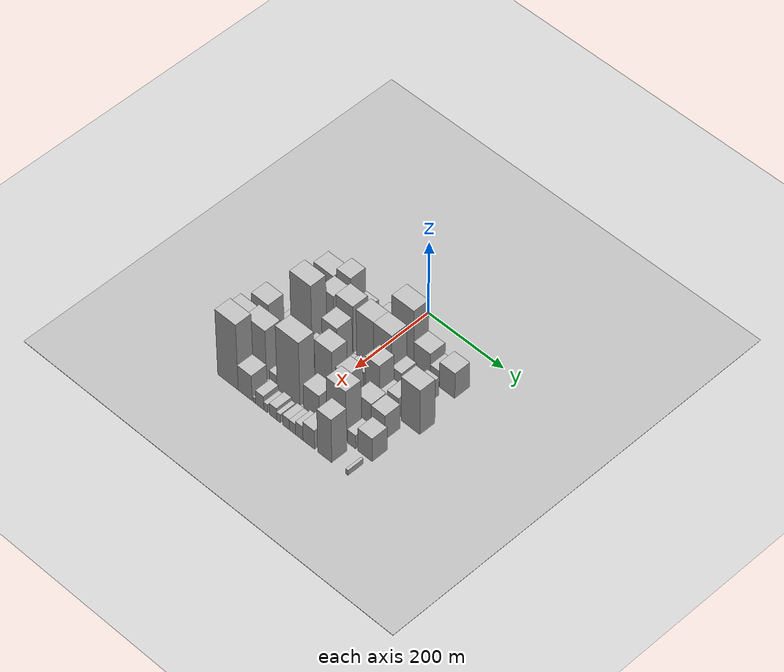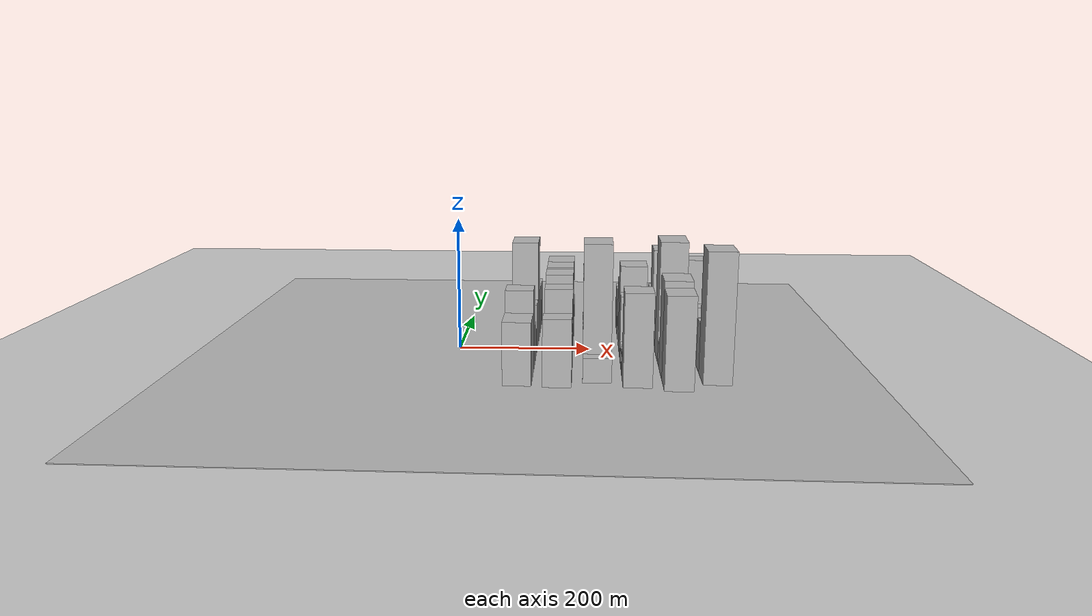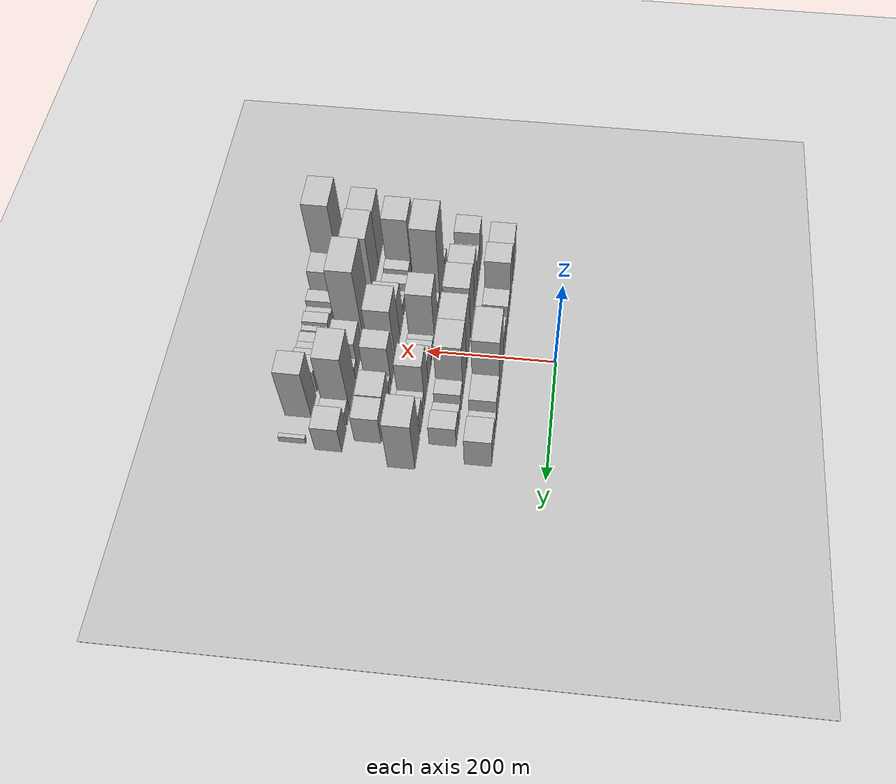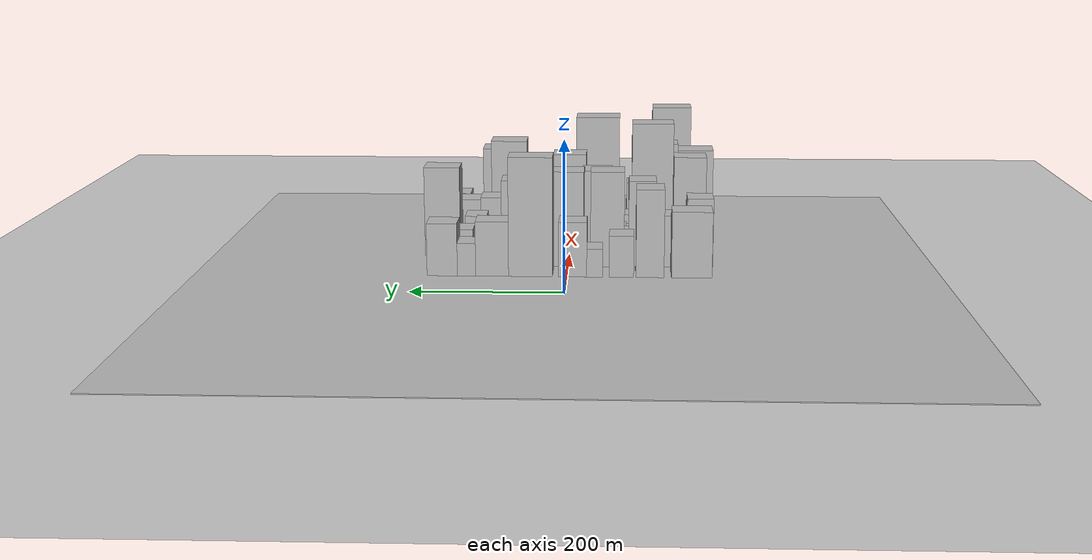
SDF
<sdf version="1.6">
 <world name="default">
  <include><name>ground_plane_1</name><uri>model://HANNAS_ground_plane</uri></include>
  <include>
   <name>ground_plane_2</name>
   <uri>model://HANNAS_ground_plane</uri>
   <pose>100 0 0  0 0 0</pose>
  </include>
  <model name="building_20">
   <static>1</static>
   <pose>100.0000 -166.6295 0 0.000000 0.000000 0.000000</pose>
   <link name="link">
    <pose>0 0 45.00 0 0 0</pose>
    <collision name="collision"><geometry><box><size>40.0000 53.7943 90.0000</size></box></geometry></collision>
    <visual name="visual">
     <cast_shadows>0</cast_shadows>
     <geometry><box><size>40.0000 53.7943 90.0000</size></box></geometry>
     <material>
      <script>
       <uri>model://HANNAS_wall/materials/scripts</uri>
       <uri>model://HANNAS_wall/materials/textures</uri>
       <name>vrc/HANNAS_wall</name>
      </script>
     </material>
    </visual>
   </link>
  </model>
  <model name="building_21">
   <static>1</static>
   <pose>100.0000 -111.0268 0 0.000000 0.000000 0.000000</pose>
   <link name="link">
    <pose>0 0 60.00 0 0 0</pose>
    <collision name="collision"><geometry><box><size>40.0000 37.4112 120.0000</size></box></geometry></collision>
    <visual name="visual">
     <cast_shadows>0</cast_shadows>
     <geometry><box><size>40.0000 37.4112 120.0000</size></box></geometry>
     <material>
      <script>
       <uri>model://HANNAS_wall/materials/scripts</uri>
       <uri>model://HANNAS_wall/materials/textures</uri>
       <name>vrc/HANNAS_wall</name>
      </script>
     </material>
    </visual>
   </link>
  </model>
  <model name="building_22">
   <static>1</static>
   <pose>100.0000 -73.0119 0 0.000000 0.000000 0.000000</pose>
   <link name="link">
    <pose>0 0 28.50 0 0 0</pose>
    <collision name="collision"><geometry><box><size>40.0000 32.6185 57.0000</size></box></geometry></collision>
    <visual name="visual">
     <cast_shadows>0</cast_shadows>
     <geometry><box><size>40.0000 32.6185 57.0000</size></box></geometry>
     <material>
      <script>
       <uri>model://HANNAS_wall/materials/scripts</uri>
       <uri>model://HANNAS_wall/materials/textures</uri>
       <name>vrc/HANNAS_wall</name>
      </script>
     </material>
    </visual>
   </link>
  </model>
  <model name="building_23">
   <static>1</static>
   <pose>100.0000 -37.2203 0 0.000000 0.000000 0.000000</pose>
   <link name="link">
    <pose>0 0 19.50 0 0 0</pose>
    <collision name="collision"><geometry><box><size>40.0000 20.9647 39.0000</size></box></geometry></collision>
    <visual name="visual">
     <cast_shadows>0</cast_shadows>
     <geometry><box><size>40.0000 20.9647 39.0000</size></box></geometry>
     <material>
      <script>
       <uri>model://HANNAS_wall/materials/scripts</uri>
       <uri>model://HANNAS_wall/materials/textures</uri>
       <name>vrc/HANNAS_wall</name>
      </script>
     </material>
    </visual>
   </link>
  </model>
  <model name="building_24">
   <static>1</static>
   <pose>100.0000 -7.9457 0 0.000000 0.000000 0.000000</pose>
   <link name="link">
    <pose>0 0 37.50 0 0 0</pose>
    <collision name="collision"><geometry><box><size>40.0000 37.5844 75.0000</size></box></geometry></collision>
    <visual name="visual">
     <cast_shadows>0</cast_shadows>
     <geometry><box><size>40.0000 37.5844 75.0000</size></box></geometry>
     <material>
      <script>
       <uri>model://HANNAS_wall/materials/scripts</uri>
       <uri>model://HANNAS_wall/materials/textures</uri>
       <name>vrc/HANNAS_wall</name>
      </script>
     </material>
    </visual>
   </link>
  </model>
  <model name="building_25">
   <static>1</static>
   <pose>100.0000 48.2471 0 0.000000 0.000000 0.000000</pose>
   <link name="link">
    <pose>0 0 81.00 0 0 0</pose>
    <collision name="collision"><geometry><box><size>40.0000 58.8012 162.0000</size></box></geometry></collision>
    <visual name="visual">
     <cast_shadows>0</cast_shadows>
     <geometry><box><size>40.0000 58.8012 162.0000</size></box></geometry>
     <material>
      <script>
       <uri>model://HANNAS_wall/materials/scripts</uri>
       <uri>model://HANNAS_wall/materials/textures</uri>
       <name>vrc/HANNAS_wall</name>
      </script>
     </material>
    </visual>
   </link>
  </model>
  <model name="building_26">
   <static>1</static>
   <pose>100.0000 99.6738 0 0.000000 0.000000 0.000000</pose>
   <link name="link">
    <pose>0 0 37.50 0 0 0</pose>
    <collision name="collision"><geometry><box><size>40.0000 44.0522 75.0000</size></box></geometry></collision>
    <visual name="visual">
     <cast_shadows>0</cast_shadows>
     <geometry><box><size>40.0000 44.0522 75.0000</size></box></geometry>
     <material>
      <script>
       <uri>model://HANNAS_wall/materials/scripts</uri>
       <uri>model://HANNAS_wall/materials/textures</uri>
       <name>vrc/HANNAS_wall</name>
      </script>
     </material>
    </visual>
   </link>
  </model>
  <model name="building_27">
   <static>1</static>
   <pose>100.0000 133.9592 0 0.000000 0.000000 0.000000</pose>
   <link name="link">
    <pose>0 0 22.50 0 0 0</pose>
    <collision name="collision"><geometry><box><size>40.0000 24.5187 45.0000</size></box></geometry></collision>
    <visual name="visual">
     <cast_shadows>0</cast_shadows>
     <geometry><box><size>40.0000 24.5187 45.0000</size></box></geometry>
     <material>
      <script>
       <uri>model://HANNAS_wall/materials/scripts</uri>
       <uri>model://HANNAS_wall/materials/textures</uri>
       <name>vrc/HANNAS_wall</name>
      </script>
     </material>
    </visual>
   </link>
  </model>
  <model name="building_28">
   <static>1</static>
   <pose>100.0000 166.5390 0 0.000000 0.000000 0.000000</pose>
   <link name="link">
    <pose>0 0 36.00 0 0 0</pose>
    <collision name="collision"><geometry><box><size>40.0000 40.6410 72.0000</size></box></geometry></collision>
    <visual name="visual">
     <cast_shadows>0</cast_shadows>
     <geometry><box><size>40.0000 40.6410 72.0000</size></box></geometry>
     <material>
      <script>
       <uri>model://HANNAS_wall/materials/scripts</uri>
       <uri>model://HANNAS_wall/materials/textures</uri>
       <name>vrc/HANNAS_wall</name>
      </script>
     </material>
    </visual>
   </link>
  </model>
  <model name="building_72">
   <static>1</static>
   <pose>155.0000 -179.8344 0 0.000000 0.000000 0.000000</pose>
   <link name="link">
    <pose>0 0 48.00 0 0 0</pose>
    <collision name="collision"><geometry><box><size>40.0000 35.5413 96.0000</size></box></geometry></collision>
    <visual name="visual">
     <cast_shadows>0</cast_shadows>
     <geometry><box><size>40.0000 35.5413 96.0000</size></box></geometry>
     <material>
      <script>
       <uri>model://HANNAS_wall/materials/scripts</uri>
       <uri>model://HANNAS_wall/materials/textures</uri>
       <name>vrc/HANNAS_wall</name>
      </script>
     </material>
    </visual>
   </link>
  </model>
  <model name="building_73">
   <static>1</static>
   <pose>155.0000 -139.4608 0 0.000000 0.000000 0.000000</pose>
   <link name="link">
    <pose>0 0 36.00 0 0 0</pose>
    <collision name="collision"><geometry><box><size>40.0000 39.2060 72.0000</size></box></geometry></collision>
    <visual name="visual">
     <cast_shadows>0</cast_shadows>
     <geometry><box><size>40.0000 39.2060 72.0000</size></box></geometry>
     <material>
      <script>
       <uri>model://HANNAS_wall/materials/scripts</uri>
       <uri>model://HANNAS_wall/materials/textures</uri>
       <name>vrc/HANNAS_wall</name>
      </script>
     </material>
    </visual>
   </link>
  </model>
  <model name="building_74">
   <static>1</static>
   <pose>155.0000 -101.2993 0 0.000000 0.000000 0.000000</pose>
   <link name="link">
    <pose>0 0 60.00 0 0 0</pose>
    <collision name="collision"><geometry><box><size>40.0000 37.1170 120.0000</size></box></geometry></collision>
    <visual name="visual">
     <cast_shadows>0</cast_shadows>
     <geometry><box><size>40.0000 37.1170 120.0000</size></box></geometry>
     <material>
      <script>
       <uri>model://HANNAS_wall/materials/scripts</uri>
       <uri>model://HANNAS_wall/materials/textures</uri>
       <name>vrc/HANNAS_wall</name>
      </script>
     </material>
    </visual>
   </link>
  </model>
  <model name="building_75">
   <static>1</static>
   <pose>155.0000 -53.7325 0 0.000000 0.000000 0.000000</pose>
   <link name="link">
    <pose>0 0 66.00 0 0 0</pose>
    <collision name="collision"><geometry><box><size>40.0000 46.0166 132.0000</size></box></geometry></collision>
    <visual name="visual">
     <cast_shadows>0</cast_shadows>
     <geometry><box><size>40.0000 46.0166 132.0000</size></box></geometry>
     <material>
      <script>
       <uri>model://HANNAS_wall/materials/scripts</uri>
       <uri>model://HANNAS_wall/materials/textures</uri>
       <name>vrc/HANNAS_wall</name>
      </script>
     </material>
    </visual>
   </link>
  </model>
  <model name="building_76">
   <static>1</static>
   <pose>155.0000 1.4475 0 0.000000 0.000000 0.000000</pose>
   <link name="link">
    <pose>0 0 66.00 0 0 0</pose>
    <collision name="collision"><geometry><box><size>40.0000 46.3434 132.0000</size></box></geometry></collision>
    <visual name="visual">
     <cast_shadows>0</cast_shadows>
     <geometry><box><size>40.0000 46.3434 132.0000</size></box></geometry>
     <material>
      <script>
       <uri>model://HANNAS_wall/materials/scripts</uri>
       <uri>model://HANNAS_wall/materials/textures</uri>
       <name>vrc/HANNAS_wall</name>
      </script>
     </material>
    </visual>
   </link>
  </model>
  <model name="building_77">
   <static>1</static>
   <pose>155.0000 49.1085 0 0.000000 0.000000 0.000000</pose>
   <link name="link">
    <pose>0 0 66.00 0 0 0</pose>
    <collision name="collision"><geometry><box><size>40.0000 48.9786 132.0000</size></box></geometry></collision>
    <visual name="visual">
     <cast_shadows>0</cast_shadows>
     <geometry><box><size>40.0000 48.9786 132.0000</size></box></geometry>
     <material>
      <script>
       <uri>model://HANNAS_wall/materials/scripts</uri>
       <uri>model://HANNAS_wall/materials/textures</uri>
       <name>vrc/HANNAS_wall</name>
      </script>
     </material>
    </visual>
   </link>
  </model>
  <model name="building_78">
   <static>1</static>
   <pose>155.0000 86.4016 0 0.000000 0.000000 0.000000</pose>
   <link name="link">
    <pose>0 0 22.50 0 0 0</pose>
    <collision name="collision"><geometry><box><size>40.0000 25.6076 45.0000</size></box></geometry></collision>
    <visual name="visual">
     <cast_shadows>0</cast_shadows>
     <geometry><box><size>40.0000 25.6076 45.0000</size></box></geometry>
     <material>
      <script>
       <uri>model://HANNAS_wall/materials/scripts</uri>
       <uri>model://HANNAS_wall/materials/textures</uri>
       <name>vrc/HANNAS_wall</name>
      </script>
     </material>
    </visual>
   </link>
  </model>
  <model name="building_79">
   <static>1</static>
   <pose>155.0000 118.9944 0 0.000000 0.000000 0.000000</pose>
   <link name="link">
    <pose>0 0 18.00 0 0 0</pose>
    <collision name="collision"><geometry><box><size>40.0000 21.5780 36.0000</size></box></geometry></collision>
    <visual name="visual">
     <cast_shadows>0</cast_shadows>
     <geometry><box><size>40.0000 21.5780 36.0000</size></box></geometry>
     <material>
      <script>
       <uri>model://HANNAS_wall/materials/scripts</uri>
       <uri>model://HANNAS_wall/materials/textures</uri>
       <name>vrc/HANNAS_wall</name>
      </script>
     </material>
    </visual>
   </link>
  </model>
  <model name="building_80">
   <static>1</static>
   <pose>155.0000 144.7499 0 0.000000 0.000000 0.000000</pose>
   <link name="link">
    <pose>0 0 25.50 0 0 0</pose>
    <collision name="collision"><geometry><box><size>40.0000 29.9330 51.0000</size></box></geometry></collision>
    <visual name="visual">
     <cast_shadows>0</cast_shadows>
     <geometry><box><size>40.0000 29.9330 51.0000</size></box></geometry>
     <material>
      <script>
       <uri>model://HANNAS_wall/materials/scripts</uri>
       <uri>model://HANNAS_wall/materials/textures</uri>
       <name>vrc/HANNAS_wall</name>
      </script>
     </material>
    </visual>
   </link>
  </model>
  <model name="building_124">
   <static>1</static>
   <pose>210.0000 -163.6286 0 0.000000 0.000000 0.000000</pose>
   <link name="link">
    <pose>0 0 18.00 0 0 0</pose>
    <collision name="collision"><geometry><box><size>40.0000 21.0119 36.0000</size></box></geometry></collision>
    <visual name="visual">
     <cast_shadows>0</cast_shadows>
     <geometry><box><size>40.0000 21.0119 36.0000</size></box></geometry>
     <material>
      <script>
       <uri>model://HANNAS_wall/materials/scripts</uri>
       <uri>model://HANNAS_wall/materials/textures</uri>
       <name>vrc/HANNAS_wall</name>
      </script>
     </material>
    </visual>
   </link>
  </model>
  <model name="building_125">
   <static>1</static>
   <pose>210.0000 -115.6416 0 0.000000 0.000000 0.000000</pose>
   <link name="link">
    <pose>0 0 94.50 0 0 0</pose>
    <collision name="collision"><geometry><box><size>40.0000 56.9619 189.0000</size></box></geometry></collision>
    <visual name="visual">
     <cast_shadows>0</cast_shadows>
     <geometry><box><size>40.0000 56.9619 189.0000</size></box></geometry>
     <material>
      <script>
       <uri>model://HANNAS_wall/materials/scripts</uri>
       <uri>model://HANNAS_wall/materials/textures</uri>
       <name>vrc/HANNAS_wall</name>
      </script>
     </material>
    </visual>
   </link>
  </model>
  <model name="building_126">
   <static>1</static>
   <pose>210.0000 -76.6468 0 0.000000 0.000000 0.000000</pose>
   <link name="link">
    <pose>0 0 18.00 0 0 0</pose>
    <collision name="collision"><geometry><box><size>40.0000 21.0279 36.0000</size></box></geometry></collision>
    <visual name="visual">
     <cast_shadows>0</cast_shadows>
     <geometry><box><size>40.0000 21.0279 36.0000</size></box></geometry>
     <material>
      <script>
       <uri>model://HANNAS_wall/materials/scripts</uri>
       <uri>model://HANNAS_wall/materials/textures</uri>
       <name>vrc/HANNAS_wall</name>
      </script>
     </material>
    </visual>
   </link>
  </model>
  <model name="building_127">
   <static>1</static>
   <pose>210.0000 -38.5295 0 0.000000 0.000000 0.000000</pose>
   <link name="link">
    <pose>0 0 61.50 0 0 0</pose>
    <collision name="collision"><geometry><box><size>40.0000 41.2065 123.0000</size></box></geometry></collision>
    <visual name="visual">
     <cast_shadows>0</cast_shadows>
     <geometry><box><size>40.0000 41.2065 123.0000</size></box></geometry>
     <material>
      <script>
       <uri>model://HANNAS_wall/materials/scripts</uri>
       <uri>model://HANNAS_wall/materials/textures</uri>
       <name>vrc/HANNAS_wall</name>
      </script>
     </material>
    </visual>
   </link>
  </model>
  <model name="building_128">
   <static>1</static>
   <pose>210.0000 -7.0625 0 0.000000 0.000000 0.000000</pose>
   <link name="link">
    <pose>0 0 13.50 0 0 0</pose>
    <collision name="collision"><geometry><box><size>40.0000 11.7276 27.0000</size></box></geometry></collision>
    <visual name="visual">
     <cast_shadows>0</cast_shadows>
     <geometry><box><size>40.0000 11.7276 27.0000</size></box></geometry>
     <material>
      <script>
       <uri>model://HANNAS_wall/materials/scripts</uri>
       <uri>model://HANNAS_wall/materials/textures</uri>
       <name>vrc/HANNAS_wall</name>
      </script>
     </material>
    </visual>
   </link>
  </model>
  <model name="building_129">
   <static>1</static>
   <pose>210.0000 7.4874 0 0.000000 0.000000 0.000000</pose>
   <link name="link">
    <pose>0 0 15.00 0 0 0</pose>
    <collision name="collision"><geometry><box><size>40.0000 17.3720 30.0000</size></box></geometry></collision>
    <visual name="visual">
     <cast_shadows>0</cast_shadows>
     <geometry><box><size>40.0000 17.3720 30.0000</size></box></geometry>
     <material>
      <script>
       <uri>model://HANNAS_wall/materials/scripts</uri>
       <uri>model://HANNAS_wall/materials/textures</uri>
       <name>vrc/HANNAS_wall</name>
      </script>
     </material>
    </visual>
   </link>
  </model>
  <model name="building_130">
   <static>1</static>
   <pose>210.0000 20.8253 0 0.000000 0.000000 0.000000</pose>
   <link name="link">
    <pose>0 0 10.50 0 0 0</pose>
    <collision name="collision"><geometry><box><size>40.0000 9.3038 21.0000</size></box></geometry></collision>
    <visual name="visual">
     <cast_shadows>0</cast_shadows>
     <geometry><box><size>40.0000 9.3038 21.0000</size></box></geometry>
     <material>
      <script>
       <uri>model://HANNAS_wall/materials/scripts</uri>
       <uri>model://HANNAS_wall/materials/textures</uri>
       <name>vrc/HANNAS_wall</name>
      </script>
     </material>
    </visual>
   </link>
  </model>
  <model name="building_131">
   <static>1</static>
   <pose>210.0000 41.4350 0 0.000000 0.000000 0.000000</pose>
   <link name="link">
    <pose>0 0 28.50 0 0 0</pose>
    <collision name="collision"><geometry><box><size>40.0000 31.9154 57.0000</size></box></geometry></collision>
    <visual name="visual">
     <cast_shadows>0</cast_shadows>
     <geometry><box><size>40.0000 31.9154 57.0000</size></box></geometry>
     <material>
      <script>
       <uri>model://HANNAS_wall/materials/scripts</uri>
       <uri>model://HANNAS_wall/materials/textures</uri>
       <name>vrc/HANNAS_wall</name>
      </script>
     </material>
    </visual>
   </link>
  </model>
  <model name="building_132">
   <static>1</static>
   <pose>210.0000 76.2448 0 0.000000 0.000000 0.000000</pose>
   <link name="link">
    <pose>0 0 54.00 0 0 0</pose>
    <collision name="collision"><geometry><box><size>40.0000 37.7043 108.0000</size></box></geometry></collision>
    <visual name="visual">
     <cast_shadows>0</cast_shadows>
     <geometry><box><size>40.0000 37.7043 108.0000</size></box></geometry>
     <material>
      <script>
       <uri>model://HANNAS_wall/materials/scripts</uri>
       <uri>model://HANNAS_wall/materials/textures</uri>
       <name>vrc/HANNAS_wall</name>
      </script>
     </material>
    </visual>
   </link>
  </model>
  <model name="building_133">
   <static>1</static>
   <pose>210.0000 105.5126 0 0.000000 0.000000 0.000000</pose>
   <link name="link">
    <pose>0 0 19.50 0 0 0</pose>
    <collision name="collision"><geometry><box><size>40.0000 20.8313 39.0000</size></box></geometry></collision>
    <visual name="visual">
     <cast_shadows>0</cast_shadows>
     <geometry><box><size>40.0000 20.8313 39.0000</size></box></geometry>
     <material>
      <script>
       <uri>model://HANNAS_wall/materials/scripts</uri>
       <uri>model://HANNAS_wall/materials/textures</uri>
       <name>vrc/HANNAS_wall</name>
      </script>
     </material>
    </visual>
   </link>
  </model>
  <model name="building_134">
   <static>1</static>
   <pose>210.0000 131.0005 0 0.000000 0.000000 0.000000</pose>
   <link name="link">
    <pose>0 0 28.50 0 0 0</pose>
    <collision name="collision"><geometry><box><size>40.0000 30.1444 57.0000</size></box></geometry></collision>
    <visual name="visual">
     <cast_shadows>0</cast_shadows>
     <geometry><box><size>40.0000 30.1444 57.0000</size></box></geometry>
     <material>
      <script>
       <uri>model://HANNAS_wall/materials/scripts</uri>
       <uri>model://HANNAS_wall/materials/textures</uri>
       <name>vrc/HANNAS_wall</name>
      </script>
     </material>
    </visual>
   </link>
  </model>
  <model name="building_135">
   <static>1</static>
   <pose>210.0000 177.9269 0 0.000000 0.000000 0.000000</pose>
   <link name="link">
    <pose>0 0 63.00 0 0 0</pose>
    <collision name="collision"><geometry><box><size>40.0000 49.7085 126.0000</size></box></geometry></collision>
    <visual name="visual">
     <cast_shadows>0</cast_shadows>
     <geometry><box><size>40.0000 49.7085 126.0000</size></box></geometry>
     <material>
      <script>
       <uri>model://HANNAS_wall/materials/scripts</uri>
       <uri>model://HANNAS_wall/materials/textures</uri>
       <name>vrc/HANNAS_wall</name>
      </script>
     </material>
    </visual>
   </link>
  </model>
  <model name="building_180">
   <static>1</static>
   <pose>265.0000 -170.1512 0 0.000000 0.000000 0.000000</pose>
   <link name="link">
    <pose>0 0 66.00 0 0 0</pose>
    <collision name="collision"><geometry><box><size>40.0000 46.0381 132.0000</size></box></geometry></collision>
    <visual name="visual">
     <cast_shadows>0</cast_shadows>
     <geometry><box><size>40.0000 46.0381 132.0000</size></box></geometry>
     <material>
      <script>
       <uri>model://HANNAS_wall/materials/scripts</uri>
       <uri>model://HANNAS_wall/materials/textures</uri>
       <name>vrc/HANNAS_wall</name>
      </script>
     </material>
    </visual>
   </link>
  </model>
  <model name="building_181">
   <static>1</static>
   <pose>265.0000 -134.2769 0 0.000000 0.000000 0.000000</pose>
   <link name="link">
    <pose>0 0 18.00 0 0 0</pose>
    <collision name="collision"><geometry><box><size>40.0000 19.7105 36.0000</size></box></geometry></collision>
    <visual name="visual">
     <cast_shadows>0</cast_shadows>
     <geometry><box><size>40.0000 19.7105 36.0000</size></box></geometry>
     <material>
      <script>
       <uri>model://HANNAS_wall/materials/scripts</uri>
       <uri>model://HANNAS_wall/materials/textures</uri>
       <name>vrc/HANNAS_wall</name>
      </script>
     </material>
    </visual>
   </link>
  </model>
  <model name="building_182">
   <static>1</static>
   <pose>265.0000 -109.3964 0 0.000000 0.000000 0.000000</pose>
   <link name="link">
    <pose>0 0 16.50 0 0 0</pose>
    <collision name="collision"><geometry><box><size>40.0000 18.0505 33.0000</size></box></geometry></collision>
    <visual name="visual">
     <cast_shadows>0</cast_shadows>
     <geometry><box><size>40.0000 18.0505 33.0000</size></box></geometry>
     <material>
      <script>
       <uri>model://HANNAS_wall/materials/scripts</uri>
       <uri>model://HANNAS_wall/materials/textures</uri>
       <name>vrc/HANNAS_wall</name>
      </script>
     </material>
    </visual>
   </link>
  </model>
  <model name="building_183">
   <static>1</static>
   <pose>265.0000 -85.7484 0 0.000000 0.000000 0.000000</pose>
   <link name="link">
    <pose>0 0 13.50 0 0 0</pose>
    <collision name="collision"><geometry><box><size>40.0000 11.2455 27.0000</size></box></geometry></collision>
    <visual name="visual">
     <cast_shadows>0</cast_shadows>
     <geometry><box><size>40.0000 11.2455 27.0000</size></box></geometry>
     <material>
      <script>
       <uri>model://HANNAS_wall/materials/scripts</uri>
       <uri>model://HANNAS_wall/materials/textures</uri>
       <name>vrc/HANNAS_wall</name>
      </script>
     </material>
    </visual>
   </link>
  </model>
  <model name="building_184">
   <static>1</static>
   <pose>265.0000 -71.7917 0 0.000000 0.000000 0.000000</pose>
   <link name="link">
    <pose>0 0 15.00 0 0 0</pose>
    <collision name="collision"><geometry><box><size>40.0000 16.6678 30.0000</size></box></geometry></collision>
    <visual name="visual">
     <cast_shadows>0</cast_shadows>
     <geometry><box><size>40.0000 16.6678 30.0000</size></box></geometry>
     <material>
      <script>
       <uri>model://HANNAS_wall/materials/scripts</uri>
       <uri>model://HANNAS_wall/materials/textures</uri>
       <name>vrc/HANNAS_wall</name>
      </script>
     </material>
    </visual>
   </link>
  </model>
  <model name="building_185">
   <static>1</static>
   <pose>265.0000 -39.4401 0 0.000000 0.000000 0.000000</pose>
   <link name="link">
    <pose>0 0 48.00 0 0 0</pose>
    <collision name="collision"><geometry><box><size>40.0000 34.0354 96.0000</size></box></geometry></collision>
    <visual name="visual">
     <cast_shadows>0</cast_shadows>
     <geometry><box><size>40.0000 34.0354 96.0000</size></box></geometry>
     <material>
      <script>
       <uri>model://HANNAS_wall/materials/scripts</uri>
       <uri>model://HANNAS_wall/materials/textures</uri>
       <name>vrc/HANNAS_wall</name>
      </script>
     </material>
    </visual>
   </link>
  </model>
  <model name="building_186">
   <static>1</static>
   <pose>265.0000 0.9081 0 0.000000 0.000000 0.000000</pose>
   <link name="link">
    <pose>0 0 67.50 0 0 0</pose>
    <collision name="collision"><geometry><box><size>40.0000 46.6611 135.0000</size></box></geometry></collision>
    <visual name="visual">
     <cast_shadows>0</cast_shadows>
     <geometry><box><size>40.0000 46.6611 135.0000</size></box></geometry>
     <material>
      <script>
       <uri>model://HANNAS_wall/materials/scripts</uri>
       <uri>model://HANNAS_wall/materials/textures</uri>
       <name>vrc/HANNAS_wall</name>
      </script>
     </material>
    </visual>
   </link>
  </model>
  <model name="building_187">
   <static>1</static>
   <pose>265.0000 50.3337 0 0.000000 0.000000 0.000000</pose>
   <link name="link">
    <pose>0 0 51.00 0 0 0</pose>
    <collision name="collision"><geometry><box><size>40.0000 32.1900 102.0000</size></box></geometry></collision>
    <visual name="visual">
     <cast_shadows>0</cast_shadows>
     <geometry><box><size>40.0000 32.1900 102.0000</size></box></geometry>
     <material>
      <script>
       <uri>model://HANNAS_wall/materials/scripts</uri>
       <uri>model://HANNAS_wall/materials/textures</uri>
       <name>vrc/HANNAS_wall</name>
      </script>
     </material>
    </visual>
   </link>
  </model>
  <model name="building_188">
   <static>1</static>
   <pose>265.0000 77.9336 0 0.000000 0.000000 0.000000</pose>
   <link name="link">
    <pose>0 0 16.50 0 0 0</pose>
    <collision name="collision"><geometry><box><size>40.0000 17.0098 33.0000</size></box></geometry></collision>
    <visual name="visual">
     <cast_shadows>0</cast_shadows>
     <geometry><box><size>40.0000 17.0098 33.0000</size></box></geometry>
     <material>
      <script>
       <uri>model://HANNAS_wall/materials/scripts</uri>
       <uri>model://HANNAS_wall/materials/textures</uri>
       <name>vrc/HANNAS_wall</name>
      </script>
     </material>
    </visual>
   </link>
  </model>
  <model name="building_189">
   <static>1</static>
   <pose>265.0000 107.6332 0 0.000000 0.000000 0.000000</pose>
   <link name="link">
    <pose>0 0 36.00 0 0 0</pose>
    <collision name="collision"><geometry><box><size>40.0000 42.3894 72.0000</size></box></geometry></collision>
    <visual name="visual">
     <cast_shadows>0</cast_shadows>
     <geometry><box><size>40.0000 42.3894 72.0000</size></box></geometry>
     <material>
      <script>
       <uri>model://HANNAS_wall/materials/scripts</uri>
       <uri>model://HANNAS_wall/materials/textures</uri>
       <name>vrc/HANNAS_wall</name>
      </script>
     </material>
    </visual>
   </link>
  </model>
  <model name="building_190">
   <static>1</static>
   <pose>265.0000 147.1856 0 0.000000 0.000000 0.000000</pose>
   <link name="link">
    <pose>0 0 34.50 0 0 0</pose>
    <collision name="collision"><geometry><box><size>40.0000 36.7153 69.0000</size></box></geometry></collision>
    <visual name="visual">
     <cast_shadows>0</cast_shadows>
     <geometry><box><size>40.0000 36.7153 69.0000</size></box></geometry>
     <material>
      <script>
       <uri>model://HANNAS_wall/materials/scripts</uri>
       <uri>model://HANNAS_wall/materials/textures</uri>
       <name>vrc/HANNAS_wall</name>
      </script>
     </material>
    </visual>
   </link>
  </model>
  <model name="building_229">
   <static>1</static>
   <pose>320.0000 -180.0996 0 0.000000 0.000000 0.000000</pose>
   <link name="link">
    <pose>0 0 66.00 0 0 0</pose>
    <collision name="collision"><geometry><box><size>40.0000 51.4011 132.0000</size></box></geometry></collision>
    <visual name="visual">
     <cast_shadows>0</cast_shadows>
     <geometry><box><size>40.0000 51.4011 132.0000</size></box></geometry>
     <material>
      <script>
       <uri>model://HANNAS_wall/materials/scripts</uri>
       <uri>model://HANNAS_wall/materials/textures</uri>
       <name>vrc/HANNAS_wall</name>
      </script>
     </material>
    </visual>
   </link>
  </model>
  <model name="building_230">
   <static>1</static>
   <pose>320.0000 -126.3934 0 0.000000 0.000000 0.000000</pose>
   <link name="link">
    <pose>0 0 70.50 0 0 0</pose>
    <collision name="collision"><geometry><box><size>40.0000 56.0112 141.0000</size></box></geometry></collision>
    <visual name="visual">
     <cast_shadows>0</cast_shadows>
     <geometry><box><size>40.0000 56.0112 141.0000</size></box></geometry>
     <material>
      <script>
       <uri>model://HANNAS_wall/materials/scripts</uri>
       <uri>model://HANNAS_wall/materials/textures</uri>
       <name>vrc/HANNAS_wall</name>
      </script>
     </material>
    </visual>
   </link>
  </model>
  <model name="building_231">
   <static>1</static>
   <pose>320.0000 -80.0324 0 0.000000 0.000000 0.000000</pose>
   <link name="link">
    <pose>0 0 18.00 0 0 0</pose>
    <collision name="collision"><geometry><box><size>40.0000 20.7108 36.0000</size></box></geometry></collision>
    <visual name="visual">
     <cast_shadows>0</cast_shadows>
     <geometry><box><size>40.0000 20.7108 36.0000</size></box></geometry>
     <material>
      <script>
       <uri>model://HANNAS_wall/materials/scripts</uri>
       <uri>model://HANNAS_wall/materials/textures</uri>
       <name>vrc/HANNAS_wall</name>
      </script>
     </material>
    </visual>
   </link>
  </model>
  <model name="building_232">
   <static>1</static>
   <pose>320.0000 -38.5332 0 0.000000 0.000000 0.000000</pose>
   <link name="link">
    <pose>0 0 90.00 0 0 0</pose>
    <collision name="collision"><geometry><box><size>40.0000 62.2876 180.0000</size></box></geometry></collision>
    <visual name="visual">
     <cast_shadows>0</cast_shadows>
     <geometry><box><size>40.0000 62.2876 180.0000</size></box></geometry>
     <material>
      <script>
       <uri>model://HANNAS_wall/materials/scripts</uri>
       <uri>model://HANNAS_wall/materials/textures</uri>
       <name>vrc/HANNAS_wall</name>
      </script>
     </material>
    </visual>
   </link>
  </model>
  <model name="building_233">
   <static>1</static>
   <pose>320.0000 23.9056 0 0.000000 0.000000 0.000000</pose>
   <link name="link">
    <pose>0 0 36.00 0 0 0</pose>
    <collision name="collision"><geometry><box><size>40.0000 42.5900 72.0000</size></box></geometry></collision>
    <visual name="visual">
     <cast_shadows>0</cast_shadows>
     <geometry><box><size>40.0000 42.5900 72.0000</size></box></geometry>
     <material>
      <script>
       <uri>model://HANNAS_wall/materials/scripts</uri>
       <uri>model://HANNAS_wall/materials/textures</uri>
       <name>vrc/HANNAS_wall</name>
      </script>
     </material>
    </visual>
   </link>
  </model>
  <model name="building_234">
   <static>1</static>
   <pose>320.0000 53.7924 0 0.000000 0.000000 0.000000</pose>
   <link name="link">
    <pose>0 0 16.50 0 0 0</pose>
    <collision name="collision"><geometry><box><size>40.0000 17.1836 33.0000</size></box></geometry></collision>
    <visual name="visual">
     <cast_shadows>0</cast_shadows>
     <geometry><box><size>40.0000 17.1836 33.0000</size></box></geometry>
     <material>
      <script>
       <uri>model://HANNAS_wall/materials/scripts</uri>
       <uri>model://HANNAS_wall/materials/textures</uri>
       <name>vrc/HANNAS_wall</name>
      </script>
     </material>
    </visual>
   </link>
  </model>
  <model name="building_235">
   <static>1</static>
   <pose>320.0000 91.3584 0 0.000000 0.000000 0.000000</pose>
   <link name="link">
    <pose>0 0 72.00 0 0 0</pose>
    <collision name="collision"><geometry><box><size>40.0000 51.9485 144.0000</size></box></geometry></collision>
    <visual name="visual">
     <cast_shadows>0</cast_shadows>
     <geometry><box><size>40.0000 51.9485 144.0000</size></box></geometry>
     <material>
      <script>
       <uri>model://HANNAS_wall/materials/scripts</uri>
       <uri>model://HANNAS_wall/materials/textures</uri>
       <name>vrc/HANNAS_wall</name>
      </script>
     </material>
    </visual>
   </link>
  </model>
  <model name="building_236">
   <static>1</static>
   <pose>320.0000 131.3012 0 0.000000 0.000000 0.000000</pose>
   <link name="link">
    <pose>0 0 19.50 0 0 0</pose>
    <collision name="collision"><geometry><box><size>40.0000 21.9371 39.0000</size></box></geometry></collision>
    <visual name="visual">
     <cast_shadows>0</cast_shadows>
     <geometry><box><size>40.0000 21.9371 39.0000</size></box></geometry>
     <material>
      <script>
       <uri>model://HANNAS_wall/materials/scripts</uri>
       <uri>model://HANNAS_wall/materials/textures</uri>
       <name>vrc/HANNAS_wall</name>
      </script>
     </material>
    </visual>
   </link>
  </model>
  <model name="building_237">
   <static>1</static>
   <pose>320.0000 167.0932 0 0.000000 0.000000 0.000000</pose>
   <link name="link">
    <pose>0 0 33.00 0 0 0</pose>
    <collision name="collision"><geometry><box><size>40.0000 37.6469 66.0000</size></box></geometry></collision>
    <visual name="visual">
     <cast_shadows>0</cast_shadows>
     <geometry><box><size>40.0000 37.6469 66.0000</size></box></geometry>
     <material>
      <script>
       <uri>model://HANNAS_wall/materials/scripts</uri>
       <uri>model://HANNAS_wall/materials/textures</uri>
       <name>vrc/HANNAS_wall</name>
      </script>
     </material>
    </visual>
   </link>
  </model>
  <model name="building_282">
   <static>1</static>
   <pose>375.0000 -146.9673 0 0.000000 0.000000 0.000000</pose>
   <link name="link">
    <pose>0 0 93.00 0 0 0</pose>
    <collision name="collision"><geometry><box><size>40.0000 56.4566 186.0000</size></box></geometry></collision>
    <visual name="visual">
     <cast_shadows>0</cast_shadows>
     <geometry><box><size>40.0000 56.4566 186.0000</size></box></geometry>
     <material>
      <script>
       <uri>model://HANNAS_wall/materials/scripts</uri>
       <uri>model://HANNAS_wall/materials/textures</uri>
       <name>vrc/HANNAS_wall</name>
      </script>
     </material>
    </visual>
   </link>
  </model>
  <model name="building_283">
   <static>1</static>
   <pose>375.0000 -99.7182 0 0.000000 0.000000 0.000000</pose>
   <link name="link">
    <pose>0 0 36.00 0 0 0</pose>
    <collision name="collision"><geometry><box><size>40.0000 38.0415 72.0000</size></box></geometry></collision>
    <visual name="visual">
     <cast_shadows>0</cast_shadows>
     <geometry><box><size>40.0000 38.0415 72.0000</size></box></geometry>
     <material>
      <script>
       <uri>model://HANNAS_wall/materials/scripts</uri>
       <uri>model://HANNAS_wall/materials/textures</uri>
       <name>vrc/HANNAS_wall</name>
      </script>
     </material>
    </visual>
   </link>
  </model>
  <model name="building_284">
   <static>1</static>
   <pose>375.0000 -74.2717 0 0.000000 0.000000 0.000000</pose>
   <link name="link">
    <pose>0 0 7.50 0 0 0</pose>
    <collision name="collision"><geometry><box><size>40.0000 6.8517 15.0000</size></box></geometry></collision>
    <visual name="visual">
     <cast_shadows>0</cast_shadows>
     <geometry><box><size>40.0000 6.8517 15.0000</size></box></geometry>
     <material>
      <script>
       <uri>model://HANNAS_wall/materials/scripts</uri>
       <uri>model://HANNAS_wall/materials/textures</uri>
       <name>vrc/HANNAS_wall</name>
      </script>
     </material>
    </visual>
   </link>
  </model>
  <model name="building_285">
   <static>1</static>
   <pose>375.0000 -59.8381 0 0.000000 0.000000 0.000000</pose>
   <link name="link">
    <pose>0 0 19.50 0 0 0</pose>
    <collision name="collision"><geometry><box><size>40.0000 22.0155 39.0000</size></box></geometry></collision>
    <visual name="visual">
     <cast_shadows>0</cast_shadows>
     <geometry><box><size>40.0000 22.0155 39.0000</size></box></geometry>
     <material>
      <script>
       <uri>model://HANNAS_wall/materials/scripts</uri>
       <uri>model://HANNAS_wall/materials/textures</uri>
       <name>vrc/HANNAS_wall</name>
      </script>
     </material>
    </visual>
   </link>
  </model>
  <model name="building_286">
   <static>1</static>
   <pose>375.0000 -43.6922 0 0.000000 0.000000 0.000000</pose>
   <link name="link">
    <pose>0 0 12.00 0 0 0</pose>
    <collision name="collision"><geometry><box><size>40.0000 10.2764 24.0000</size></box></geometry></collision>
    <visual name="visual">
     <cast_shadows>0</cast_shadows>
     <geometry><box><size>40.0000 10.2764 24.0000</size></box></geometry>
     <material>
      <script>
       <uri>model://HANNAS_wall/materials/scripts</uri>
       <uri>model://HANNAS_wall/materials/textures</uri>
       <name>vrc/HANNAS_wall</name>
      </script>
     </material>
    </visual>
   </link>
  </model>
  <model name="building_287">
   <static>1</static>
   <pose>375.0000 -23.6710 0 0.000000 0.000000 0.000000</pose>
   <link name="link">
    <pose>0 0 16.50 0 0 0</pose>
    <collision name="collision"><geometry><box><size>40.0000 19.7661 33.0000</size></box></geometry></collision>
    <visual name="visual">
     <cast_shadows>0</cast_shadows>
     <geometry><box><size>40.0000 19.7661 33.0000</size></box></geometry>
     <material>
      <script>
       <uri>model://HANNAS_wall/materials/scripts</uri>
       <uri>model://HANNAS_wall/materials/textures</uri>
       <name>vrc/HANNAS_wall</name>
      </script>
     </material>
    </visual>
   </link>
  </model>
  <model name="building_288">
   <static>1</static>
   <pose>375.0000 -8.7004 0 0.000000 0.000000 0.000000</pose>
   <link name="link">
    <pose>0 0 12.00 0 0 0</pose>
    <collision name="collision"><geometry><box><size>40.0000 10.1752 24.0000</size></box></geometry></collision>
    <visual name="visual">
     <cast_shadows>0</cast_shadows>
     <geometry><box><size>40.0000 10.1752 24.0000</size></box></geometry>
     <material>
      <script>
       <uri>model://HANNAS_wall/materials/scripts</uri>
       <uri>model://HANNAS_wall/materials/textures</uri>
       <name>vrc/HANNAS_wall</name>
      </script>
     </material>
    </visual>
   </link>
  </model>
  <model name="building_289">
   <static>1</static>
   <pose>375.0000 11.3440 0 0.000000 0.000000 0.000000</pose>
   <link name="link">
    <pose>0 0 15.00 0 0 0</pose>
    <collision name="collision"><geometry><box><size>40.0000 17.9135 30.0000</size></box></geometry></collision>
    <visual name="visual">
     <cast_shadows>0</cast_shadows>
     <geometry><box><size>40.0000 17.9135 30.0000</size></box></geometry>
     <material>
      <script>
       <uri>model://HANNAS_wall/materials/scripts</uri>
       <uri>model://HANNAS_wall/materials/textures</uri>
       <name>vrc/HANNAS_wall</name>
      </script>
     </material>
    </visual>
   </link>
  </model>
  <model name="building_290">
   <static>1</static>
   <pose>375.0000 28.9218 0 0.000000 0.000000 0.000000</pose>
   <link name="link">
    <pose>0 0 15.00 0 0 0</pose>
    <collision name="collision"><geometry><box><size>40.0000 17.2422 30.0000</size></box></geometry></collision>
    <visual name="visual">
     <cast_shadows>0</cast_shadows>
     <geometry><box><size>40.0000 17.2422 30.0000</size></box></geometry>
     <material>
      <script>
       <uri>model://HANNAS_wall/materials/scripts</uri>
       <uri>model://HANNAS_wall/materials/textures</uri>
       <name>vrc/HANNAS_wall</name>
      </script>
     </material>
    </visual>
   </link>
  </model>
  <model name="building_291">
   <static>1</static>
   <pose>375.0000 47.4307 0 0.000000 0.000000 0.000000</pose>
   <link name="link">
    <pose>0 0 19.50 0 0 0</pose>
    <collision name="collision"><geometry><box><size>40.0000 19.7756 39.0000</size></box></geometry></collision>
    <visual name="visual">
     <cast_shadows>0</cast_shadows>
     <geometry><box><size>40.0000 19.7756 39.0000</size></box></geometry>
     <material>
      <script>
       <uri>model://HANNAS_wall/materials/scripts</uri>
       <uri>model://HANNAS_wall/materials/textures</uri>
       <name>vrc/HANNAS_wall</name>
      </script>
     </material>
    </visual>
   </link>
  </model>
  <model name="building_292">
   <static>1</static>
   <pose>375.0000 72.8583 0 0.000000 0.000000 0.000000</pose>
   <link name="link">
    <pose>0 0 27.00 0 0 0</pose>
    <collision name="collision"><geometry><box><size>40.0000 31.0796 54.0000</size></box></geometry></collision>
    <visual name="visual">
     <cast_shadows>0</cast_shadows>
     <geometry><box><size>40.0000 31.0796 54.0000</size></box></geometry>
     <material>
      <script>
       <uri>model://HANNAS_wall/materials/scripts</uri>
       <uri>model://HANNAS_wall/materials/textures</uri>
       <name>vrc/HANNAS_wall</name>
      </script>
     </material>
    </visual>
   </link>
  </model>
  <model name="building_293">
   <static>1</static>
   <pose>375.0000 115.2080 0 0.000000 0.000000 0.000000</pose>
   <link name="link">
    <pose>0 0 61.50 0 0 0</pose>
    <collision name="collision"><geometry><box><size>40.0000 37.6197 123.0000</size></box></geometry></collision>
    <visual name="visual">
     <cast_shadows>0</cast_shadows>
     <geometry><box><size>40.0000 37.6197 123.0000</size></box></geometry>
     <material>
      <script>
       <uri>model://HANNAS_wall/materials/scripts</uri>
       <uri>model://HANNAS_wall/materials/textures</uri>
       <name>vrc/HANNAS_wall</name>
      </script>
     </material>
    </visual>
   </link>
  </model>
  <model name="building_294">
   <static>1</static>
   <pose>375.0000 174.6419 0 0.000000 0.000000 0.000000</pose>
   <link name="link">
    <pose>0 0 7.50 0 0 0</pose>
    <collision name="collision"><geometry><box><size>40.0000 6.4161 15.0000</size></box></geometry></collision>
    <visual name="visual">
     <cast_shadows>0</cast_shadows>
     <geometry><box><size>40.0000 6.4161 15.0000</size></box></geometry>
     <material>
      <script>
       <uri>model://HANNAS_wall/materials/scripts</uri>
       <uri>model://HANNAS_wall/materials/textures</uri>
       <name>vrc/HANNAS_wall</name>
      </script>
     </material>
    </visual>
   </link>
  </model>
 </world>
</sdf>
